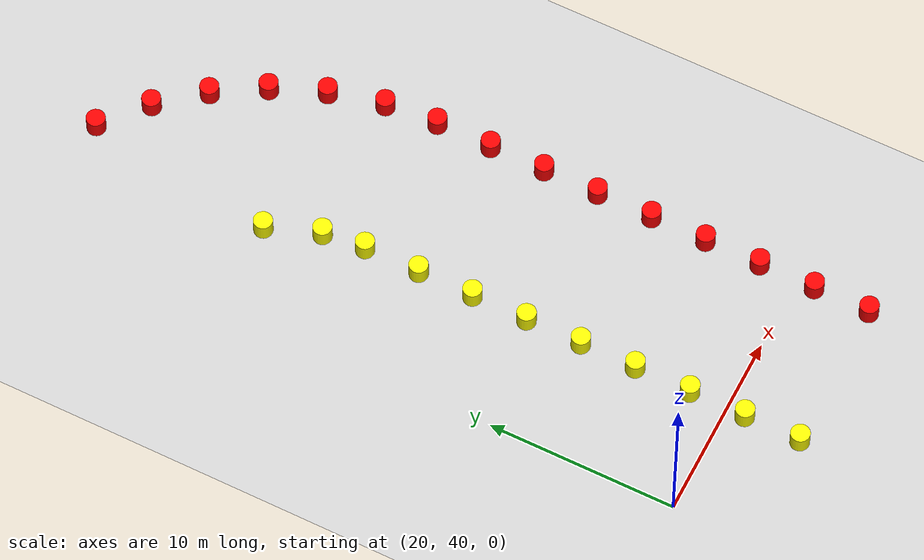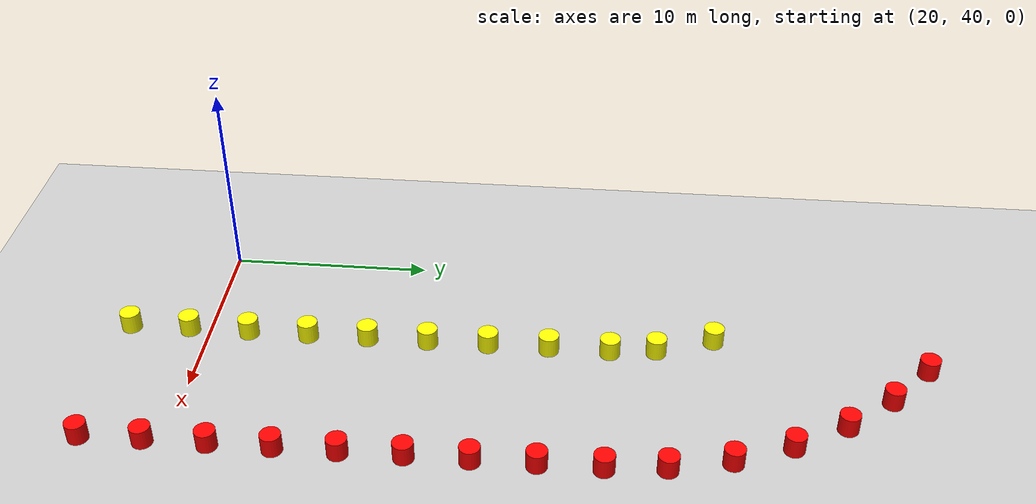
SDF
<sdf version="1.9">
 <world name="empty">
  <model name="ground_plane">
   <static>true</static>
   <link name="link">
    <collision name="collision">
     <geometry><plane><normal>0 0 1</normal><size>1000 1000</size></plane></geometry>
    </collision>
    <visual name="visual">
     <geometry><plane><normal>0 0 1</normal><size>1000 1000</size></plane></geometry>
     <material>
      <ambient>0.8 0.8 0.8 1</ambient>
      <diffuse>0.8 0.8 0.8 1</diffuse>
      <specular>0.8 0.8 0.8 1</specular>
     </material>
    </visual>
    <inertial>
     <mass>1</mass>
     <inertia><ixx>1</ixx><ixy>0</ixy><ixz>0</ixz><iyy>1</iyy><iyz>0</iyz><izz>1</izz></inertia>
    </inertial>
   </link>
  </model>
  <model name="red_cone_64">
   <pose>26.21797726265454 75.33482918504689 0.5 0 -0 0</pose>
   <link name="cylinder_link">
    <inertial>
     <inertia>
      <ixx>0.14580000000000001</ixx>
      <ixy>0</ixy>
      <ixz>0</ixz>
      <iyy>0.14580000000000001</iyy>
      <iyz>0</iyz>
      <izz>0.125</izz>
     </inertia>
     <mass>1</mass>
    </inertial>
    <collision name="cylinder_collision">
     <geometry><cylinder><radius>0.5</radius><length>1</length></cylinder></geometry>
    </collision>
    <visual name="cylinder_visual">
     <geometry><cylinder><radius>0.5</radius><length>1</length></cylinder></geometry>
     <material><ambient>1 0 0 1</ambient><diffuse>1 0 0 1</diffuse><specular>1 1 1 1</specular></material>
    </visual>
   </link>
   <static>false</static>
  </model>
  <model name="red_cone_65">
   <pose>28.489671853752302 73.38016267756423 0.5 0 -0 0</pose>
   <link name="cylinder_link">
    <inertial>
     <inertia>
      <ixx>0.14580000000000001</ixx>
      <ixy>0</ixy>
      <ixz>0</ixz>
      <iyy>0.14580000000000001</iyy>
      <iyz>0</iyz>
      <izz>0.125</izz>
     </inertia>
     <mass>1</mass>
    </inertial>
    <collision name="cylinder_collision">
     <geometry><cylinder><radius>0.5</radius><length>1</length></cylinder></geometry>
    </collision>
    <visual name="cylinder_visual">
     <geometry><cylinder><radius>0.5</radius><length>1</length></cylinder></geometry>
     <material><ambient>1 0 0 1</ambient><diffuse>1 0 0 1</diffuse><specular>1 1 1 1</specular></material>
    </visual>
   </link>
   <static>false</static>
  </model>
  <model name="red_cone_66">
   <pose>30.4257569559468 71.09261115950879 0.5 0 -0 0</pose>
   <link name="cylinder_link">
    <inertial>
     <inertia>
      <ixx>0.14580000000000001</ixx>
      <ixy>0</ixy>
      <ixz>0</ixz>
      <iyy>0.14580000000000001</iyy>
      <iyz>0</iyz>
      <izz>0.125</izz>
     </inertia>
     <mass>1</mass>
    </inertial>
    <collision name="cylinder_collision">
     <geometry><cylinder><radius>0.5</radius><length>1</length></cylinder></geometry>
    </collision>
    <visual name="cylinder_visual">
     <geometry><cylinder><radius>0.5</radius><length>1</length></cylinder></geometry>
     <material><ambient>1 0 0 1</ambient><diffuse>1 0 0 1</diffuse><specular>1 1 1 1</specular></material>
    </visual>
   </link>
   <static>false</static>
  </model>
  <model name="red_cone_67">
   <pose>31.978064716182363 68.52908661540751 0.5 0 -0 0</pose>
   <link name="cylinder_link">
    <inertial>
     <inertia>
      <ixx>0.14580000000000001</ixx>
      <ixy>0</ixy>
      <ixz>0</ixz>
      <iyy>0.14580000000000001</iyy>
      <iyz>0</iyz>
      <izz>0.125</izz>
     </inertia>
     <mass>1</mass>
    </inertial>
    <collision name="cylinder_collision">
     <geometry><cylinder><radius>0.5</radius><length>1</length></cylinder></geometry>
    </collision>
    <visual name="cylinder_visual">
     <geometry><cylinder><radius>0.5</radius><length>1</length></cylinder></geometry>
     <material><ambient>1 0 0 1</ambient><diffuse>1 0 0 1</diffuse><specular>1 1 1 1</specular></material>
    </visual>
   </link>
   <static>false</static>
  </model>
  <model name="red_cone_68">
   <pose>33.10797527626813 65.75336696153323 0.5 0 -0 0</pose>
   <link name="cylinder_link">
    <inertial>
     <inertia>
      <ixx>0.14580000000000001</ixx>
      <ixy>0</ixy>
      <ixz>0</ixz>
      <iyy>0.14580000000000001</iyy>
      <iyz>0</iyz>
      <izz>0.125</izz>
     </inertia>
     <mass>1</mass>
    </inertial>
    <collision name="cylinder_collision">
     <geometry><cylinder><radius>0.5</radius><length>1</length></cylinder></geometry>
    </collision>
    <visual name="cylinder_visual">
     <geometry><cylinder><radius>0.5</radius><length>1</length></cylinder></geometry>
     <material><ambient>1 0 0 1</ambient><diffuse>1 0 0 1</diffuse><specular>1 1 1 1</specular></material>
    </visual>
   </link>
   <static>false</static>
  </model>
  <model name="red_cone_69">
   <pose>33.78737759616635 62.83450931539595 0.5 0 -0 0</pose>
   <link name="cylinder_link">
    <inertial>
     <inertia>
      <ixx>0.14580000000000001</ixx>
      <ixy>0</ixy>
      <ixz>0</ixz>
      <iyy>0.14580000000000001</iyy>
      <iyz>0</iyz>
      <izz>0.125</izz>
     </inertia>
     <mass>1</mass>
    </inertial>
    <collision name="cylinder_collision">
     <geometry><cylinder><radius>0.5</radius><length>1</length></cylinder></geometry>
    </collision>
    <visual name="cylinder_visual">
     <geometry><cylinder><radius>0.5</radius><length>1</length></cylinder></geometry>
     <material><ambient>1 0 0 1</ambient><diffuse>1 0 0 1</diffuse><specular>1 1 1 1</specular></material>
    </visual>
   </link>
   <static>false</static>
  </model>
  <model name="red_cone_70">
   <pose>34.0 60.00000000000001 0.5 0 -0 0</pose>
   <link name="cylinder_link">
    <inertial>
     <inertia>
      <ixx>0.14580000000000001</ixx>
      <ixy>0</ixy>
      <ixz>0</ixz>
      <iyy>0.14580000000000001</iyy>
      <iyz>0</iyz>
      <izz>0.125</izz>
     </inertia>
     <mass>1</mass>
    </inertial>
    <collision name="cylinder_collision">
     <geometry><cylinder><radius>0.5</radius><length>1</length></cylinder></geometry>
    </collision>
    <visual name="cylinder_visual">
     <geometry><cylinder><radius>0.5</radius><length>1</length></cylinder></geometry>
     <material><ambient>1 0 0 1</ambient><diffuse>1 0 0 1</diffuse><specular>1 1 1 1</specular></material>
    </visual>
   </link>
   <static>false</static>
  </model>
  <model name="red_cone_71">
   <pose>34.0 57.00000000000001 0.5 0 -0 0</pose>
   <link name="cylinder_link">
    <inertial>
     <inertia>
      <ixx>0.14580000000000001</ixx>
      <ixy>0</ixy>
      <ixz>0</ixz>
      <iyy>0.14580000000000001</iyy>
      <iyz>0</iyz>
      <izz>0.125</izz>
     </inertia>
     <mass>1</mass>
    </inertial>
    <collision name="cylinder_collision">
     <geometry><cylinder><radius>0.5</radius><length>1</length></cylinder></geometry>
    </collision>
    <visual name="cylinder_visual">
     <geometry><cylinder><radius>0.5</radius><length>1</length></cylinder></geometry>
     <material><ambient>1 0 0 1</ambient><diffuse>1 0 0 1</diffuse><specular>1 1 1 1</specular></material>
    </visual>
   </link>
   <static>false</static>
  </model>
  <model name="red_cone_72">
   <pose>34.0 54.00000000000001 0.5 0 -0 0</pose>
   <link name="cylinder_link">
    <inertial>
     <inertia>
      <ixx>0.14580000000000001</ixx>
      <ixy>0</ixy>
      <ixz>0</ixz>
      <iyy>0.14580000000000001</iyy>
      <iyz>0</iyz>
      <izz>0.125</izz>
     </inertia>
     <mass>1</mass>
    </inertial>
    <collision name="cylinder_collision">
     <geometry><cylinder><radius>0.5</radius><length>1</length></cylinder></geometry>
    </collision>
    <visual name="cylinder_visual">
     <geometry><cylinder><radius>0.5</radius><length>1</length></cylinder></geometry>
     <material><ambient>1 0 0 1</ambient><diffuse>1 0 0 1</diffuse><specular>1 1 1 1</specular></material>
    </visual>
   </link>
   <static>false</static>
  </model>
  <model name="red_cone_73">
   <pose>34.0 51.00000000000001 0.5 0 -0 0</pose>
   <link name="cylinder_link">
    <inertial>
     <inertia>
      <ixx>0.14580000000000001</ixx>
      <ixy>0</ixy>
      <ixz>0</ixz>
      <iyy>0.14580000000000001</iyy>
      <iyz>0</iyz>
      <izz>0.125</izz>
     </inertia>
     <mass>1</mass>
    </inertial>
    <collision name="cylinder_collision">
     <geometry><cylinder><radius>0.5</radius><length>1</length></cylinder></geometry>
    </collision>
    <visual name="cylinder_visual">
     <geometry><cylinder><radius>0.5</radius><length>1</length></cylinder></geometry>
     <material><ambient>1 0 0 1</ambient><diffuse>1 0 0 1</diffuse><specular>1 1 1 1</specular></material>
    </visual>
   </link>
   <static>false</static>
  </model>
  <model name="red_cone_74">
   <pose>34.0 48.00000000000001 0.5 0 -0 0</pose>
   <link name="cylinder_link">
    <inertial>
     <inertia>
      <ixx>0.14580000000000001</ixx>
      <ixy>0</ixy>
      <ixz>0</ixz>
      <iyy>0.14580000000000001</iyy>
      <iyz>0</iyz>
      <izz>0.125</izz>
     </inertia>
     <mass>1</mass>
    </inertial>
    <collision name="cylinder_collision">
     <geometry><cylinder><radius>0.5</radius><length>1</length></cylinder></geometry>
    </collision>
    <visual name="cylinder_visual">
     <geometry><cylinder><radius>0.5</radius><length>1</length></cylinder></geometry>
     <material><ambient>1 0 0 1</ambient><diffuse>1 0 0 1</diffuse><specular>1 1 1 1</specular></material>
    </visual>
   </link>
   <static>false</static>
  </model>
  <model name="red_cone_75">
   <pose>34.0 45.00000000000001 0.5 0 -0 0</pose>
   <link name="cylinder_link">
    <inertial>
     <inertia>
      <ixx>0.14580000000000001</ixx>
      <ixy>0</ixy>
      <ixz>0</ixz>
      <iyy>0.14580000000000001</iyy>
      <iyz>0</iyz>
      <izz>0.125</izz>
     </inertia>
     <mass>1</mass>
    </inertial>
    <collision name="cylinder_collision">
     <geometry><cylinder><radius>0.5</radius><length>1</length></cylinder></geometry>
    </collision>
    <visual name="cylinder_visual">
     <geometry><cylinder><radius>0.5</radius><length>1</length></cylinder></geometry>
     <material><ambient>1 0 0 1</ambient><diffuse>1 0 0 1</diffuse><specular>1 1 1 1</specular></material>
    </visual>
   </link>
   <static>false</static>
  </model>
  <model name="red_cone_76">
   <pose>34.0 42.00000000000001 0.5 0 -0 0</pose>
   <link name="cylinder_link">
    <inertial>
     <inertia>
      <ixx>0.14580000000000001</ixx>
      <ixy>0</ixy>
      <ixz>0</ixz>
      <iyy>0.14580000000000001</iyy>
      <iyz>0</iyz>
      <izz>0.125</izz>
     </inertia>
     <mass>1</mass>
    </inertial>
    <collision name="cylinder_collision">
     <geometry><cylinder><radius>0.5</radius><length>1</length></cylinder></geometry>
    </collision>
    <visual name="cylinder_visual">
     <geometry><cylinder><radius>0.5</radius><length>1</length></cylinder></geometry>
     <material><ambient>1 0 0 1</ambient><diffuse>1 0 0 1</diffuse><specular>1 1 1 1</specular></material>
    </visual>
   </link>
   <static>false</static>
  </model>
  <model name="red_cone_77">
   <pose>34.0 39.00000000000001 0.5 0 -0 0</pose>
   <link name="cylinder_link">
    <inertial>
     <inertia>
      <ixx>0.14580000000000001</ixx>
      <ixy>0</ixy>
      <ixz>0</ixz>
      <iyy>0.14580000000000001</iyy>
      <iyz>0</iyz>
      <izz>0.125</izz>
     </inertia>
     <mass>1</mass>
    </inertial>
    <collision name="cylinder_collision">
     <geometry><cylinder><radius>0.5</radius><length>1</length></cylinder></geometry>
    </collision>
    <visual name="cylinder_visual">
     <geometry><cylinder><radius>0.5</radius><length>1</length></cylinder></geometry>
     <material><ambient>1 0 0 1</ambient><diffuse>1 0 0 1</diffuse><specular>1 1 1 1</specular></material>
    </visual>
   </link>
   <static>false</static>
  </model>
  <model name="red_cone_78">
   <pose>34.0 36.00000000000001 0.5 0 -0 0</pose>
   <link name="cylinder_link">
    <inertial>
     <inertia>
      <ixx>0.14580000000000001</ixx>
      <ixy>0</ixy>
      <ixz>0</ixz>
      <iyy>0.14580000000000001</iyy>
      <iyz>0</iyz>
      <izz>0.125</izz>
     </inertia>
     <mass>1</mass>
    </inertial>
    <collision name="cylinder_collision">
     <geometry><cylinder><radius>0.5</radius><length>1</length></cylinder></geometry>
    </collision>
    <visual name="cylinder_visual">
     <geometry><cylinder><radius>0.5</radius><length>1</length></cylinder></geometry>
     <material><ambient>1 0 0 1</ambient><diffuse>1 0 0 1</diffuse><specular>1 1 1 1</specular></material>
    </visual>
   </link>
   <static>false</static>
  </model>
  <model name="yellow_cone_60">
   <pose>24.757516881854016 65.078470665499 0.5 0 -0 0</pose>
   <link name="cylinder_link">
    <inertial>
     <inertia>
      <ixx>0.14580000000000001</ixx>
      <ixy>0</ixy>
      <ixz>0</ixz>
      <iyy>0.14580000000000001</iyy>
      <iyz>0</iyz>
      <izz>0.125</izz>
     </inertia>
     <mass>1</mass>
    </inertial>
    <collision name="cylinder_collision">
     <geometry><cylinder><radius>0.5</radius><length>1</length></cylinder></geometry>
    </collision>
    <visual name="cylinder_visual">
     <geometry><cylinder><radius>0.5</radius><length>1</length></cylinder></geometry>
     <material><ambient>1 1 0 1</ambient><diffuse>1 1 0 1</diffuse><specular>1 1 1 1</specular></material>
    </visual>
   </link>
   <static>false</static>
  </model>
  <model name="yellow_cone_61">
   <pose>25.764809037631593 62.26249560957034 0.5 0 -0 0</pose>
   <link name="cylinder_link">
    <inertial>
     <inertia>
      <ixx>0.14580000000000001</ixx>
      <ixy>0</ixy>
      <ixz>0</ixz>
      <iyy>0.14580000000000001</iyy>
      <iyz>0</iyz>
      <izz>0.125</izz>
     </inertia>
     <mass>1</mass>
    </inertial>
    <collision name="cylinder_collision">
     <geometry><cylinder><radius>0.5</radius><length>1</length></cylinder></geometry>
    </collision>
    <visual name="cylinder_visual">
     <geometry><cylinder><radius>0.5</radius><length>1</length></cylinder></geometry>
     <material><ambient>1 1 0 1</ambient><diffuse>1 1 0 1</diffuse><specular>1 1 1 1</specular></material>
    </visual>
   </link>
   <static>false</static>
  </model>
  <model name="yellow_cone_62">
   <pose>25.999999999999996 60.0 0.5 0 -0 0</pose>
   <link name="cylinder_link">
    <inertial>
     <inertia>
      <ixx>0.14580000000000001</ixx>
      <ixy>0</ixy>
      <ixz>0</ixz>
      <iyy>0.14580000000000001</iyy>
      <iyz>0</iyz>
      <izz>0.125</izz>
     </inertia>
     <mass>1</mass>
    </inertial>
    <collision name="cylinder_collision">
     <geometry><cylinder><radius>0.5</radius><length>1</length></cylinder></geometry>
    </collision>
    <visual name="cylinder_visual">
     <geometry><cylinder><radius>0.5</radius><length>1</length></cylinder></geometry>
     <material><ambient>1 1 0 1</ambient><diffuse>1 1 0 1</diffuse><specular>1 1 1 1</specular></material>
    </visual>
   </link>
   <static>false</static>
  </model>
  <model name="yellow_cone_63">
   <pose>25.999999999999996 57.0 0.5 0 -0 0</pose>
   <link name="cylinder_link">
    <inertial>
     <inertia>
      <ixx>0.14580000000000001</ixx>
      <ixy>0</ixy>
      <ixz>0</ixz>
      <iyy>0.14580000000000001</iyy>
      <iyz>0</iyz>
      <izz>0.125</izz>
     </inertia>
     <mass>1</mass>
    </inertial>
    <collision name="cylinder_collision">
     <geometry><cylinder><radius>0.5</radius><length>1</length></cylinder></geometry>
    </collision>
    <visual name="cylinder_visual">
     <geometry><cylinder><radius>0.5</radius><length>1</length></cylinder></geometry>
     <material><ambient>1 1 0 1</ambient><diffuse>1 1 0 1</diffuse><specular>1 1 1 1</specular></material>
    </visual>
   </link>
   <static>false</static>
  </model>
  <model name="yellow_cone_64">
   <pose>25.999999999999996 54.0 0.5 0 -0 0</pose>
   <link name="cylinder_link">
    <inertial>
     <inertia>
      <ixx>0.14580000000000001</ixx>
      <ixy>0</ixy>
      <ixz>0</ixz>
      <iyy>0.14580000000000001</iyy>
      <iyz>0</iyz>
      <izz>0.125</izz>
     </inertia>
     <mass>1</mass>
    </inertial>
    <collision name="cylinder_collision">
     <geometry><cylinder><radius>0.5</radius><length>1</length></cylinder></geometry>
    </collision>
    <visual name="cylinder_visual">
     <geometry><cylinder><radius>0.5</radius><length>1</length></cylinder></geometry>
     <material><ambient>1 1 0 1</ambient><diffuse>1 1 0 1</diffuse><specular>1 1 1 1</specular></material>
    </visual>
   </link>
   <static>false</static>
  </model>
  <model name="yellow_cone_65">
   <pose>25.999999999999996 51.0 0.5 0 -0 0</pose>
   <link name="cylinder_link">
    <inertial>
     <inertia>
      <ixx>0.14580000000000001</ixx>
      <ixy>0</ixy>
      <ixz>0</ixz>
      <iyy>0.14580000000000001</iyy>
      <iyz>0</iyz>
      <izz>0.125</izz>
     </inertia>
     <mass>1</mass>
    </inertial>
    <collision name="cylinder_collision">
     <geometry><cylinder><radius>0.5</radius><length>1</length></cylinder></geometry>
    </collision>
    <visual name="cylinder_visual">
     <geometry><cylinder><radius>0.5</radius><length>1</length></cylinder></geometry>
     <material><ambient>1 1 0 1</ambient><diffuse>1 1 0 1</diffuse><specular>1 1 1 1</specular></material>
    </visual>
   </link>
   <static>false</static>
  </model>
  <model name="yellow_cone_66">
   <pose>25.999999999999996 48.0 0.5 0 -0 0</pose>
   <link name="cylinder_link">
    <inertial>
     <inertia>
      <ixx>0.14580000000000001</ixx>
      <ixy>0</ixy>
      <ixz>0</ixz>
      <iyy>0.14580000000000001</iyy>
      <iyz>0</iyz>
      <izz>0.125</izz>
     </inertia>
     <mass>1</mass>
    </inertial>
    <collision name="cylinder_collision">
     <geometry><cylinder><radius>0.5</radius><length>1</length></cylinder></geometry>
    </collision>
    <visual name="cylinder_visual">
     <geometry><cylinder><radius>0.5</radius><length>1</length></cylinder></geometry>
     <material><ambient>1 1 0 1</ambient><diffuse>1 1 0 1</diffuse><specular>1 1 1 1</specular></material>
    </visual>
   </link>
   <static>false</static>
  </model>
  <model name="yellow_cone_67">
   <pose>26.0 45.0 0.5 0 -0 0</pose>
   <link name="cylinder_link">
    <inertial>
     <inertia>
      <ixx>0.14580000000000001</ixx>
      <ixy>0</ixy>
      <ixz>0</ixz>
      <iyy>0.14580000000000001</iyy>
      <iyz>0</iyz>
      <izz>0.125</izz>
     </inertia>
     <mass>1</mass>
    </inertial>
    <collision name="cylinder_collision">
     <geometry><cylinder><radius>0.5</radius><length>1</length></cylinder></geometry>
    </collision>
    <visual name="cylinder_visual">
     <geometry><cylinder><radius>0.5</radius><length>1</length></cylinder></geometry>
     <material><ambient>1 1 0 1</ambient><diffuse>1 1 0 1</diffuse><specular>1 1 1 1</specular></material>
    </visual>
   </link>
   <static>false</static>
  </model>
  <model name="yellow_cone_68">
   <pose>26.0 42.0 0.5 0 -0 0</pose>
   <link name="cylinder_link">
    <inertial>
     <inertia>
      <ixx>0.14580000000000001</ixx>
      <ixy>0</ixy>
      <ixz>0</ixz>
      <iyy>0.14580000000000001</iyy>
      <iyz>0</iyz>
      <izz>0.125</izz>
     </inertia>
     <mass>1</mass>
    </inertial>
    <collision name="cylinder_collision">
     <geometry><cylinder><radius>0.5</radius><length>1</length></cylinder></geometry>
    </collision>
    <visual name="cylinder_visual">
     <geometry><cylinder><radius>0.5</radius><length>1</length></cylinder></geometry>
     <material><ambient>1 1 0 1</ambient><diffuse>1 1 0 1</diffuse><specular>1 1 1 1</specular></material>
    </visual>
   </link>
   <static>false</static>
  </model>
  <model name="yellow_cone_69">
   <pose>26.0 39.0 0.5 0 -0 0</pose>
   <link name="cylinder_link">
    <inertial>
     <inertia>
      <ixx>0.14580000000000001</ixx>
      <ixy>0</ixy>
      <ixz>0</ixz>
      <iyy>0.14580000000000001</iyy>
      <iyz>0</iyz>
      <izz>0.125</izz>
     </inertia>
     <mass>1</mass>
    </inertial>
    <collision name="cylinder_collision">
     <geometry><cylinder><radius>0.5</radius><length>1</length></cylinder></geometry>
    </collision>
    <visual name="cylinder_visual">
     <geometry><cylinder><radius>0.5</radius><length>1</length></cylinder></geometry>
     <material><ambient>1 1 0 1</ambient><diffuse>1 1 0 1</diffuse><specular>1 1 1 1</specular></material>
    </visual>
   </link>
   <static>false</static>
  </model>
  <model name="yellow_cone_70">
   <pose>26.0 36.0 0.5 0 -0 0</pose>
   <link name="cylinder_link">
    <inertial>
     <inertia>
      <ixx>0.14580000000000001</ixx>
      <ixy>0</ixy>
      <ixz>0</ixz>
      <iyy>0.14580000000000001</iyy>
      <iyz>0</iyz>
      <izz>0.125</izz>
     </inertia>
     <mass>1</mass>
    </inertial>
    <collision name="cylinder_collision">
     <geometry><cylinder><radius>0.5</radius><length>1</length></cylinder></geometry>
    </collision>
    <visual name="cylinder_visual">
     <geometry><cylinder><radius>0.5</radius><length>1</length></cylinder></geometry>
     <material><ambient>1 1 0 1</ambient><diffuse>1 1 0 1</diffuse><specular>1 1 1 1</specular></material>
    </visual>
   </link>
   <static>false</static>
  </model>
 </world>
</sdf>
